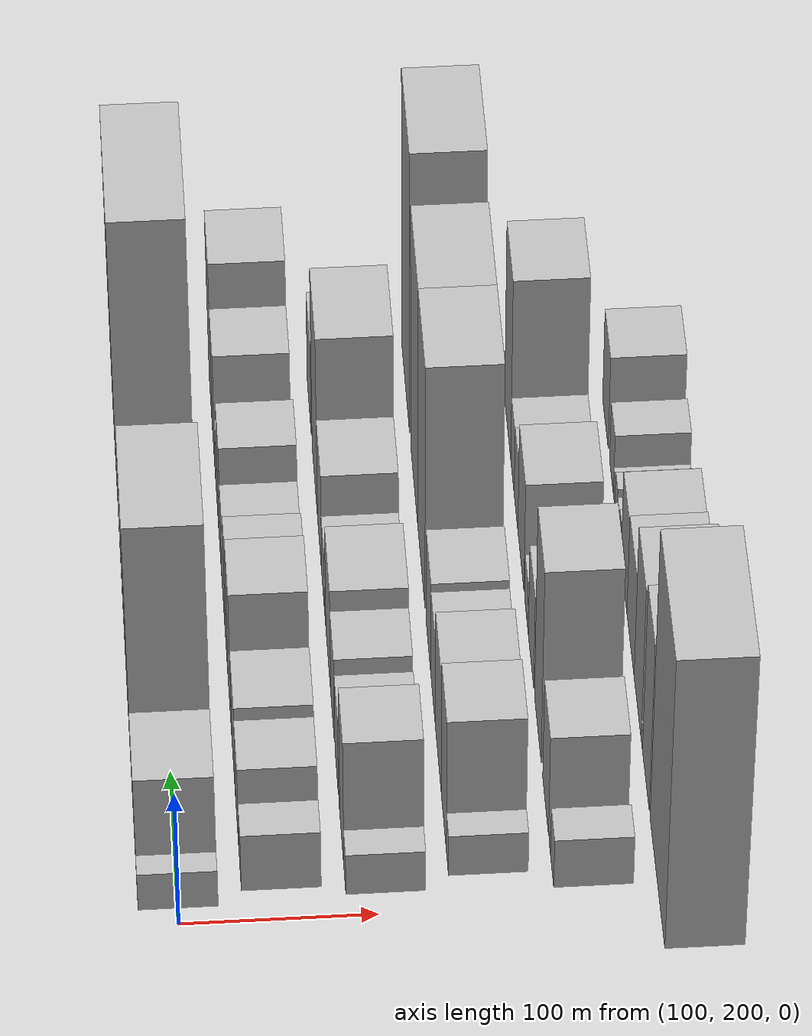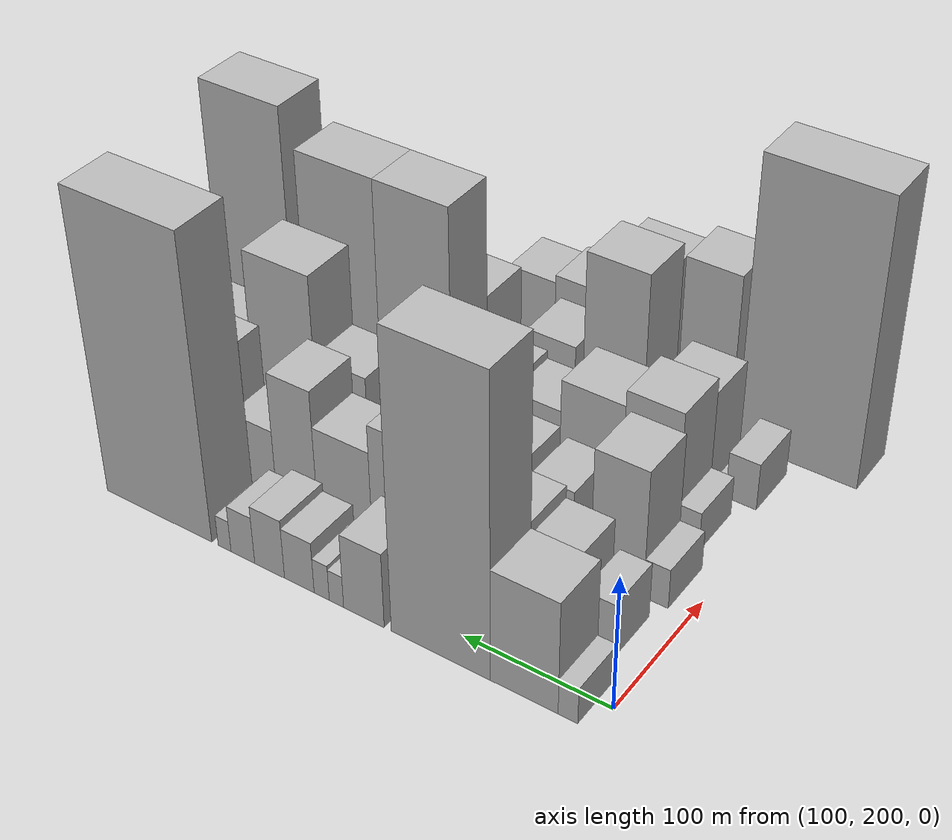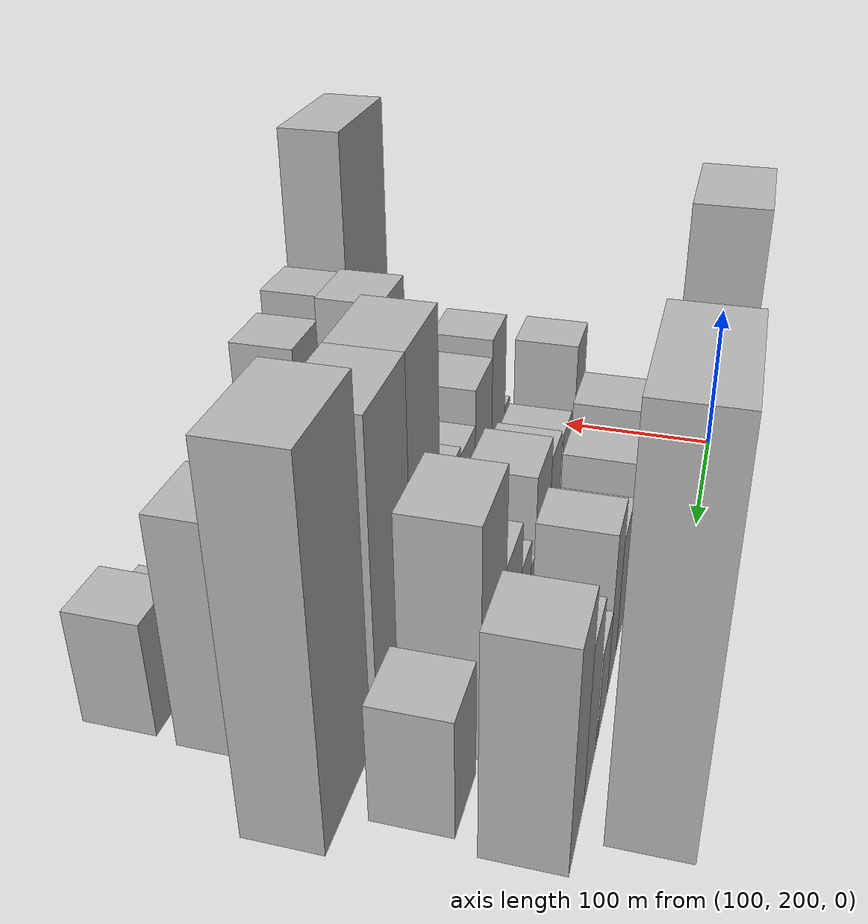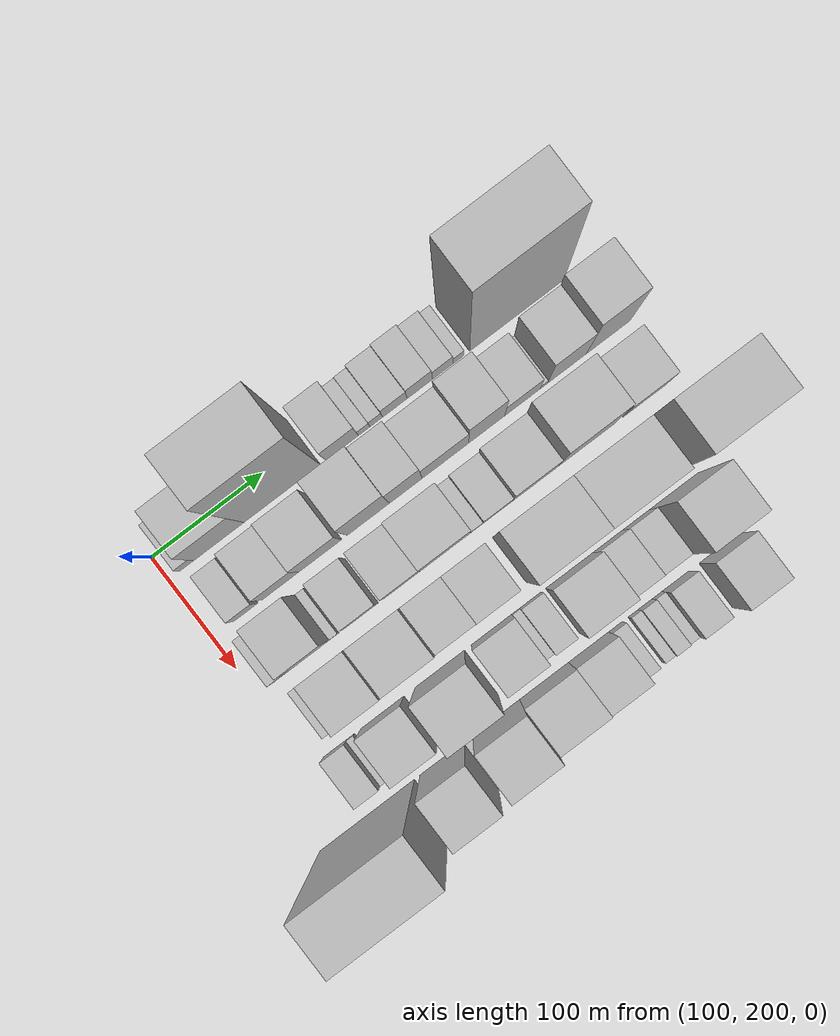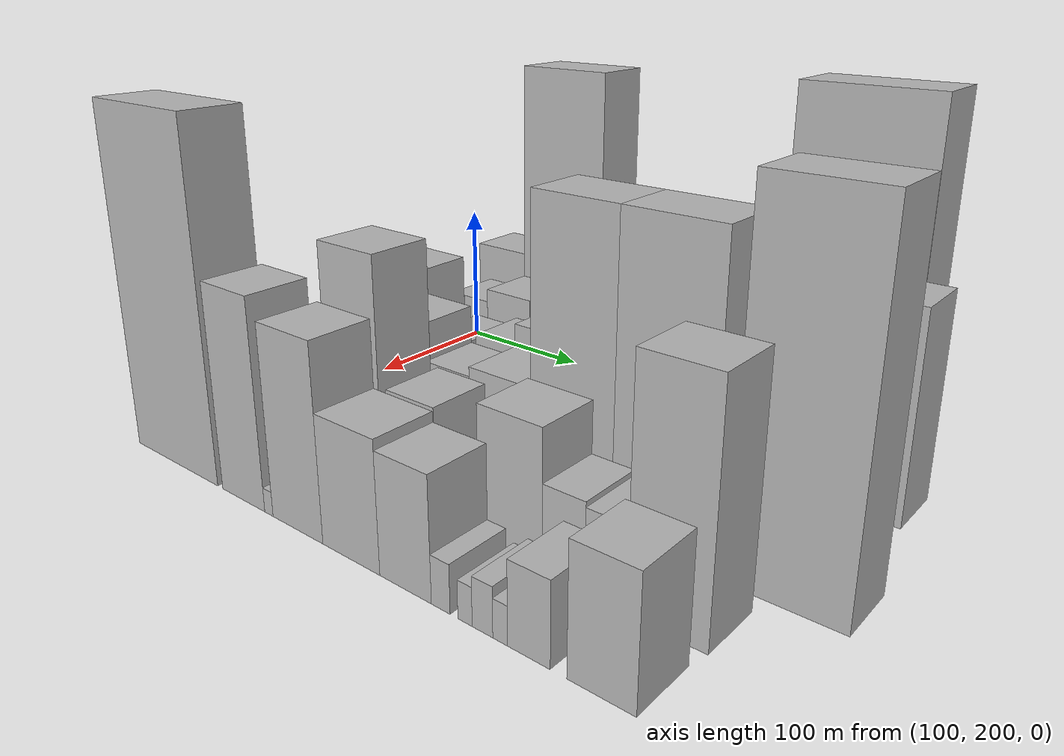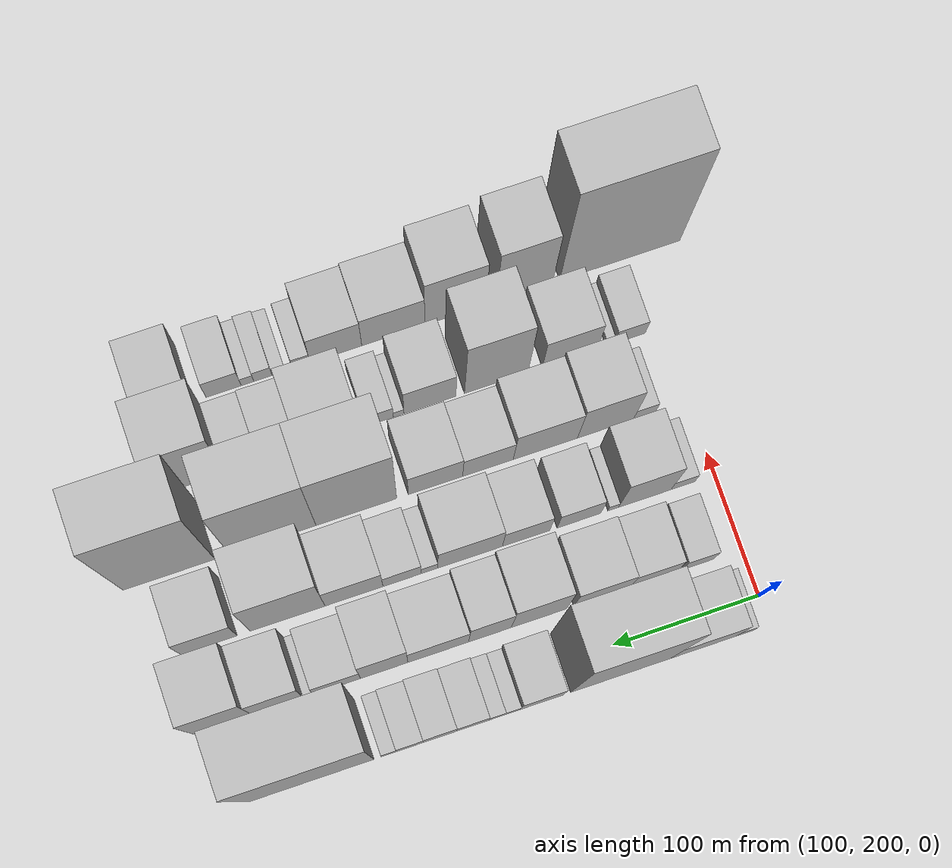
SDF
<sdf version="1.6">
 <world name="default">
  <model name="building_35">
   <static>1</static>
   <pose>100.0000 217.0242 0 0.000000 0.000000 0.000000</pose>
   <link name="link">
    <pose>0 0 13.50 0 0 0</pose>
    <collision name="collision"><geometry><box><size>40.0000 12.7344 27.0000</size></box></geometry></collision>
    <visual name="visual">
     <cast_shadows>0</cast_shadows>
     <geometry><box><size>40.0000 12.7344 27.0000</size></box></geometry>
     <material>
      <script>
       <uri>model://HANNAS_wall/materials/scripts</uri>
       <uri>model://HANNAS_wall/materials/textures</uri>
       <name>vrc/HANNAS_wall</name>
      </script>
     </material>
    </visual>
   </link>
  </model>
  <model name="building_36">
   <static>1</static>
   <pose>100.0000 245.6946 0 0.000000 0.000000 0.000000</pose>
   <link name="link">
    <pose>0 0 42.00 0 0 0</pose>
    <collision name="collision"><geometry><box><size>40.0000 44.6065 84.0000</size></box></geometry></collision>
    <visual name="visual">
     <cast_shadows>0</cast_shadows>
     <geometry><box><size>40.0000 44.6065 84.0000</size></box></geometry>
     <material>
      <script>
       <uri>model://HANNAS_wall/materials/scripts</uri>
       <uri>model://HANNAS_wall/materials/textures</uri>
       <name>vrc/HANNAS_wall</name>
      </script>
     </material>
    </visual>
   </link>
  </model>
  <model name="building_37">
   <static>1</static>
   <pose>100.0000 302.2115 0 0.000000 0.000000 0.000000</pose>
   <link name="link">
    <pose>0 0 109.50 0 0 0</pose>
    <collision name="collision"><geometry><box><size>40.0000 68.4273 219.0000</size></box></geometry></collision>
    <visual name="visual">
     <cast_shadows>0</cast_shadows>
     <geometry><box><size>40.0000 68.4273 219.0000</size></box></geometry>
     <material>
      <script>
       <uri>model://HANNAS_wall/materials/scripts</uri>
       <uri>model://HANNAS_wall/materials/textures</uri>
       <name>vrc/HANNAS_wall</name>
      </script>
     </material>
    </visual>
   </link>
  </model>
  <model name="building_38">
   <static>1</static>
   <pose>100.0000 356.0403 0 0.000000 0.000000 0.000000</pose>
   <link name="link">
    <pose>0 0 28.50 0 0 0</pose>
    <collision name="collision"><geometry><box><size>40.0000 29.2303 57.0000</size></box></geometry></collision>
    <visual name="visual">
     <cast_shadows>0</cast_shadows>
     <geometry><box><size>40.0000 29.2303 57.0000</size></box></geometry>
     <material>
      <script>
       <uri>model://HANNAS_wall/materials/scripts</uri>
       <uri>model://HANNAS_wall/materials/textures</uri>
       <name>vrc/HANNAS_wall</name>
      </script>
     </material>
    </visual>
   </link>
  </model>
  <model name="building_39">
   <static>1</static>
   <pose>100.0000 375.9039 0 0.000000 0.000000 0.000000</pose>
   <link name="link">
    <pose>0 0 12.00 0 0 0</pose>
    <collision name="collision"><geometry><box><size>40.0000 10.4968 24.0000</size></box></geometry></collision>
    <visual name="visual">
     <cast_shadows>0</cast_shadows>
     <geometry><box><size>40.0000 10.4968 24.0000</size></box></geometry>
     <material>
      <script>
       <uri>model://HANNAS_wall/materials/scripts</uri>
       <uri>model://HANNAS_wall/materials/textures</uri>
       <name>vrc/HANNAS_wall</name>
      </script>
     </material>
    </visual>
   </link>
  </model>
  <model name="building_40">
   <static>1</static>
   <pose>100.0000 386.7250 0 0.000000 0.000000 0.000000</pose>
   <link name="link">
    <pose>0 0 13.50 0 0 0</pose>
    <collision name="collision"><geometry><box><size>40.0000 11.1454 27.0000</size></box></geometry></collision>
    <visual name="visual">
     <cast_shadows>0</cast_shadows>
     <geometry><box><size>40.0000 11.1454 27.0000</size></box></geometry>
     <material>
      <script>
       <uri>model://HANNAS_wall/materials/scripts</uri>
       <uri>model://HANNAS_wall/materials/textures</uri>
       <name>vrc/HANNAS_wall</name>
      </script>
     </material>
    </visual>
   </link>
  </model>
  <model name="building_41">
   <static>1</static>
   <pose>100.0000 403.3421 0 0.000000 0.000000 0.000000</pose>
   <link name="link">
    <pose>0 0 19.50 0 0 0</pose>
    <collision name="collision"><geometry><box><size>40.0000 22.0888 39.0000</size></box></geometry></collision>
    <visual name="visual">
     <cast_shadows>0</cast_shadows>
     <geometry><box><size>40.0000 22.0888 39.0000</size></box></geometry>
     <material>
      <script>
       <uri>model://HANNAS_wall/materials/scripts</uri>
       <uri>model://HANNAS_wall/materials/textures</uri>
       <name>vrc/HANNAS_wall</name>
      </script>
     </material>
    </visual>
   </link>
  </model>
  <model name="building_42">
   <static>1</static>
   <pose>100.0000 425.7299 0 0.000000 0.000000 0.000000</pose>
   <link name="link">
    <pose>0 0 22.50 0 0 0</pose>
    <collision name="collision"><geometry><box><size>40.0000 22.6869 45.0000</size></box></geometry></collision>
    <visual name="visual">
     <cast_shadows>0</cast_shadows>
     <geometry><box><size>40.0000 22.6869 45.0000</size></box></geometry>
     <material>
      <script>
       <uri>model://HANNAS_wall/materials/scripts</uri>
       <uri>model://HANNAS_wall/materials/textures</uri>
       <name>vrc/HANNAS_wall</name>
      </script>
     </material>
    </visual>
   </link>
  </model>
  <model name="building_43">
   <static>1</static>
   <pose>100.0000 446.2108 0 0.000000 0.000000 0.000000</pose>
   <link name="link">
    <pose>0 0 18.00 0 0 0</pose>
    <collision name="collision"><geometry><box><size>40.0000 18.2748 36.0000</size></box></geometry></collision>
    <visual name="visual">
     <cast_shadows>0</cast_shadows>
     <geometry><box><size>40.0000 18.2748 36.0000</size></box></geometry>
     <material>
      <script>
       <uri>model://HANNAS_wall/materials/scripts</uri>
       <uri>model://HANNAS_wall/materials/textures</uri>
       <name>vrc/HANNAS_wall</name>
      </script>
     </material>
    </visual>
   </link>
  </model>
  <model name="building_44">
   <static>1</static>
   <pose>100.0000 460.3603 0 0.000000 0.000000 0.000000</pose>
   <link name="link">
    <pose>0 0 12.00 0 0 0</pose>
    <collision name="collision"><geometry><box><size>40.0000 10.0242 24.0000</size></box></geometry></collision>
    <visual name="visual">
     <cast_shadows>0</cast_shadows>
     <geometry><box><size>40.0000 10.0242 24.0000</size></box></geometry>
     <material>
      <script>
       <uri>model://HANNAS_wall/materials/scripts</uri>
       <uri>model://HANNAS_wall/materials/textures</uri>
       <name>vrc/HANNAS_wall</name>
      </script>
     </material>
    </visual>
   </link>
  </model>
  <model name="building_45">
   <static>1</static>
   <pose>100.0000 512.6496 0 0.000000 0.000000 0.000000</pose>
   <link name="link">
    <pose>0 0 112.50 0 0 0</pose>
    <collision name="collision"><geometry><box><size>40.0000 84.5545 225.0000</size></box></geometry></collision>
    <visual name="visual">
     <cast_shadows>0</cast_shadows>
     <geometry><box><size>40.0000 84.5545 225.0000</size></box></geometry>
     <material>
      <script>
       <uri>model://HANNAS_wall/materials/scripts</uri>
       <uri>model://HANNAS_wall/materials/textures</uri>
       <name>vrc/HANNAS_wall</name>
      </script>
     </material>
    </visual>
   </link>
  </model>
  <model name="building_94">
   <static>1</static>
   <pose>152.0000 230.4216 0 0.000000 0.000000 0.000000</pose>
   <link name="link">
    <pose>0 0 21.00 0 0 0</pose>
    <collision name="collision"><geometry><box><size>40.0000 21.3153 42.0000</size></box></geometry></collision>
    <visual name="visual">
     <cast_shadows>0</cast_shadows>
     <geometry><box><size>40.0000 21.3153 42.0000</size></box></geometry>
     <material>
      <script>
       <uri>model://HANNAS_wall/materials/scripts</uri>
       <uri>model://HANNAS_wall/materials/textures</uri>
       <name>vrc/HANNAS_wall</name>
      </script>
     </material>
    </visual>
   </link>
  </model>
  <model name="building_95">
   <static>1</static>
   <pose>152.0000 261.3870 0 0.000000 0.000000 0.000000</pose>
   <link name="link">
    <pose>0 0 31.50 0 0 0</pose>
    <collision name="collision"><geometry><box><size>40.0000 32.6154 63.0000</size></box></geometry></collision>
    <visual name="visual">
     <cast_shadows>0</cast_shadows>
     <geometry><box><size>40.0000 32.6154 63.0000</size></box></geometry>
     <material>
      <script>
       <uri>model://HANNAS_wall/materials/scripts</uri>
       <uri>model://HANNAS_wall/materials/textures</uri>
       <name>vrc/HANNAS_wall</name>
      </script>
     </material>
    </visual>
   </link>
  </model>
  <model name="building_96">
   <static>1</static>
   <pose>152.0000 296.9586 0 0.000000 0.000000 0.000000</pose>
   <link name="link">
    <pose>0 0 36.00 0 0 0</pose>
    <collision name="collision"><geometry><box><size>40.0000 38.5279 72.0000</size></box></geometry></collision>
    <visual name="visual">
     <cast_shadows>0</cast_shadows>
     <geometry><box><size>40.0000 38.5279 72.0000</size></box></geometry>
     <material>
      <script>
       <uri>model://HANNAS_wall/materials/scripts</uri>
       <uri>model://HANNAS_wall/materials/textures</uri>
       <name>vrc/HANNAS_wall</name>
      </script>
     </material>
    </visual>
   </link>
  </model>
  <model name="building_97">
   <static>1</static>
   <pose>152.0000 340.2343 0 0.000000 0.000000 0.000000</pose>
   <link name="link">
    <pose>0 0 54.00 0 0 0</pose>
    <collision name="collision"><geometry><box><size>40.0000 38.0236 108.0000</size></box></geometry></collision>
    <visual name="visual">
     <cast_shadows>0</cast_shadows>
     <geometry><box><size>40.0000 38.0236 108.0000</size></box></geometry>
     <material>
      <script>
       <uri>model://HANNAS_wall/materials/scripts</uri>
       <uri>model://HANNAS_wall/materials/textures</uri>
       <name>vrc/HANNAS_wall</name>
      </script>
     </material>
    </visual>
   </link>
  </model>
  <model name="building_98">
   <static>1</static>
   <pose>152.0000 373.8720 0 0.000000 0.000000 0.000000</pose>
   <link name="link">
    <pose>0 0 46.50 0 0 0</pose>
    <collision name="collision"><geometry><box><size>40.0000 29.2518 93.0000</size></box></geometry></collision>
    <visual name="visual">
     <cast_shadows>0</cast_shadows>
     <geometry><box><size>40.0000 29.2518 93.0000</size></box></geometry>
     <material>
      <script>
       <uri>model://HANNAS_wall/materials/scripts</uri>
       <uri>model://HANNAS_wall/materials/textures</uri>
       <name>vrc/HANNAS_wall</name>
      </script>
     </material>
    </visual>
   </link>
  </model>
  <model name="building_99">
   <static>1</static>
   <pose>152.0000 409.2362 0 0.000000 0.000000 0.000000</pose>
   <link name="link">
    <pose>0 0 36.00 0 0 0</pose>
    <collision name="collision"><geometry><box><size>40.0000 41.4767 72.0000</size></box></geometry></collision>
    <visual name="visual">
     <cast_shadows>0</cast_shadows>
     <geometry><box><size>40.0000 41.4767 72.0000</size></box></geometry>
     <material>
      <script>
       <uri>model://HANNAS_wall/materials/scripts</uri>
       <uri>model://HANNAS_wall/materials/textures</uri>
       <name>vrc/HANNAS_wall</name>
      </script>
     </material>
    </visual>
   </link>
  </model>
  <model name="building_100">
   <static>1</static>
   <pose>152.0000 446.0586 0 0.000000 0.000000 0.000000</pose>
   <link name="link">
    <pose>0 0 49.50 0 0 0</pose>
    <collision name="collision"><geometry><box><size>40.0000 32.1679 99.0000</size></box></geometry></collision>
    <visual name="visual">
     <cast_shadows>0</cast_shadows>
     <geometry><box><size>40.0000 32.1679 99.0000</size></box></geometry>
     <material>
      <script>
       <uri>model://HANNAS_wall/materials/scripts</uri>
       <uri>model://HANNAS_wall/materials/textures</uri>
       <name>vrc/HANNAS_wall</name>
      </script>
     </material>
    </visual>
   </link>
  </model>
  <model name="building_101">
   <static>1</static>
   <pose>152.0000 478.1528 0 0.000000 0.000000 0.000000</pose>
   <link name="link">
    <pose>0 0 27.00 0 0 0</pose>
    <collision name="collision"><geometry><box><size>40.0000 32.0204 54.0000</size></box></geometry></collision>
    <visual name="visual">
     <cast_shadows>0</cast_shadows>
     <geometry><box><size>40.0000 32.0204 54.0000</size></box></geometry>
     <material>
      <script>
       <uri>model://HANNAS_wall/materials/scripts</uri>
       <uri>model://HANNAS_wall/materials/textures</uri>
       <name>vrc/HANNAS_wall</name>
      </script>
     </material>
    </visual>
   </link>
  </model>
  <model name="building_102">
   <static>1</static>
   <pose>152.0000 497.4850 0 0.000000 0.000000 0.000000</pose>
   <link name="link">
    <pose>0 0 7.50 0 0 0</pose>
    <collision name="collision"><geometry><box><size>40.0000 6.6440 15.0000</size></box></geometry></collision>
    <visual name="visual">
     <cast_shadows>0</cast_shadows>
     <geometry><box><size>40.0000 6.6440 15.0000</size></box></geometry>
     <material>
      <script>
       <uri>model://HANNAS_wall/materials/scripts</uri>
       <uri>model://HANNAS_wall/materials/textures</uri>
       <name>vrc/HANNAS_wall</name>
      </script>
     </material>
    </visual>
   </link>
  </model>
  <model name="building_103">
   <static>1</static>
   <pose>152.0000 518.0880 0 0.000000 0.000000 0.000000</pose>
   <link name="link">
    <pose>0 0 46.50 0 0 0</pose>
    <collision name="collision"><geometry><box><size>40.0000 34.5620 93.0000</size></box></geometry></collision>
    <visual name="visual">
     <cast_shadows>0</cast_shadows>
     <geometry><box><size>40.0000 34.5620 93.0000</size></box></geometry>
     <material>
      <script>
       <uri>model://HANNAS_wall/materials/scripts</uri>
       <uri>model://HANNAS_wall/materials/textures</uri>
       <name>vrc/HANNAS_wall</name>
      </script>
     </material>
    </visual>
   </link>
  </model>
  <model name="building_104">
   <static>1</static>
   <pose>152.0000 555.0826 0 0.000000 0.000000 0.000000</pose>
   <link name="link">
    <pose>0 0 63.00 0 0 0</pose>
    <collision name="collision"><geometry><box><size>40.0000 39.4271 126.0000</size></box></geometry></collision>
    <visual name="visual">
     <cast_shadows>0</cast_shadows>
     <geometry><box><size>40.0000 39.4271 126.0000</size></box></geometry>
     <material>
      <script>
       <uri>model://HANNAS_wall/materials/scripts</uri>
       <uri>model://HANNAS_wall/materials/textures</uri>
       <name>vrc/HANNAS_wall</name>
      </script>
     </material>
    </visual>
   </link>
  </model>
  <model name="building_141">
   <static>1</static>
   <pose>204.0000 222.3287 0 0.000000 0.000000 0.000000</pose>
   <link name="link">
    <pose>0 0 15.00 0 0 0</pose>
    <collision name="collision"><geometry><box><size>40.0000 16.6390 30.0000</size></box></geometry></collision>
    <visual name="visual">
     <cast_shadows>0</cast_shadows>
     <geometry><box><size>40.0000 16.6390 30.0000</size></box></geometry>
     <material>
      <script>
       <uri>model://HANNAS_wall/materials/scripts</uri>
       <uri>model://HANNAS_wall/materials/textures</uri>
       <name>vrc/HANNAS_wall</name>
      </script>
     </material>
    </visual>
   </link>
  </model>
  <model name="building_142">
   <static>1</static>
   <pose>204.0000 248.8746 0 0.000000 0.000000 0.000000</pose>
   <link name="link">
    <pose>0 0 48.00 0 0 0</pose>
    <collision name="collision"><geometry><box><size>40.0000 36.4527 96.0000</size></box></geometry></collision>
    <visual name="visual">
     <cast_shadows>0</cast_shadows>
     <geometry><box><size>40.0000 36.4527 96.0000</size></box></geometry>
     <material>
      <script>
       <uri>model://HANNAS_wall/materials/scripts</uri>
       <uri>model://HANNAS_wall/materials/textures</uri>
       <name>vrc/HANNAS_wall</name>
      </script>
     </material>
    </visual>
   </link>
  </model>
  <model name="building_143">
   <static>1</static>
   <pose>204.0000 270.7658 0 0.000000 0.000000 0.000000</pose>
   <link name="link">
    <pose>0 0 9.00 0 0 0</pose>
    <collision name="collision"><geometry><box><size>40.0000 7.3298 18.0000</size></box></geometry></collision>
    <visual name="visual">
     <cast_shadows>0</cast_shadows>
     <geometry><box><size>40.0000 7.3298 18.0000</size></box></geometry>
     <material>
      <script>
       <uri>model://HANNAS_wall/materials/scripts</uri>
       <uri>model://HANNAS_wall/materials/textures</uri>
       <name>vrc/HANNAS_wall</name>
      </script>
     </material>
    </visual>
   </link>
  </model>
  <model name="building_144">
   <static>1</static>
   <pose>204.0000 294.5492 0 0.000000 0.000000 0.000000</pose>
   <link name="link">
    <pose>0 0 28.50 0 0 0</pose>
    <collision name="collision"><geometry><box><size>40.0000 30.2370 57.0000</size></box></geometry></collision>
    <visual name="visual">
     <cast_shadows>0</cast_shadows>
     <geometry><box><size>40.0000 30.2370 57.0000</size></box></geometry>
     <material>
      <script>
       <uri>model://HANNAS_wall/materials/scripts</uri>
       <uri>model://HANNAS_wall/materials/textures</uri>
       <name>vrc/HANNAS_wall</name>
      </script>
     </material>
    </visual>
   </link>
  </model>
  <model name="building_145">
   <static>1</static>
   <pose>204.0000 331.0712 0 0.000000 0.000000 0.000000</pose>
   <link name="link">
    <pose>0 0 31.50 0 0 0</pose>
    <collision name="collision"><geometry><box><size>40.0000 32.8069 63.0000</size></box></geometry></collision>
    <visual name="visual">
     <cast_shadows>0</cast_shadows>
     <geometry><box><size>40.0000 32.8069 63.0000</size></box></geometry>
     <material>
      <script>
       <uri>model://HANNAS_wall/materials/scripts</uri>
       <uri>model://HANNAS_wall/materials/textures</uri>
       <name>vrc/HANNAS_wall</name>
      </script>
     </material>
    </visual>
   </link>
  </model>
  <model name="building_146">
   <static>1</static>
   <pose>204.0000 369.7140 0 0.000000 0.000000 0.000000</pose>
   <link name="link">
    <pose>0 0 39.00 0 0 0</pose>
    <collision name="collision"><geometry><box><size>40.0000 44.4787 78.0000</size></box></geometry></collision>
    <visual name="visual">
     <cast_shadows>0</cast_shadows>
     <geometry><box><size>40.0000 44.4787 78.0000</size></box></geometry>
     <material>
      <script>
       <uri>model://HANNAS_wall/materials/scripts</uri>
       <uri>model://HANNAS_wall/materials/textures</uri>
       <name>vrc/HANNAS_wall</name>
      </script>
     </material>
    </visual>
   </link>
  </model>
  <model name="building_147">
   <static>1</static>
   <pose>204.0000 397.6254 0 0.000000 0.000000 0.000000</pose>
   <link name="link">
    <pose>0 0 13.50 0 0 0</pose>
    <collision name="collision"><geometry><box><size>40.0000 11.3440 27.0000</size></box></geometry></collision>
    <visual name="visual">
     <cast_shadows>0</cast_shadows>
     <geometry><box><size>40.0000 11.3440 27.0000</size></box></geometry>
     <material>
      <script>
       <uri>model://HANNAS_wall/materials/scripts</uri>
       <uri>model://HANNAS_wall/materials/textures</uri>
       <name>vrc/HANNAS_wall</name>
      </script>
     </material>
    </visual>
   </link>
  </model>
  <model name="building_148">
   <static>1</static>
   <pose>204.0000 416.4373 0 0.000000 0.000000 0.000000</pose>
   <link name="link">
    <pose>0 0 22.50 0 0 0</pose>
    <collision name="collision"><geometry><box><size>40.0000 26.2798 45.0000</size></box></geometry></collision>
    <visual name="visual">
     <cast_shadows>0</cast_shadows>
     <geometry><box><size>40.0000 26.2798 45.0000</size></box></geometry>
     <material>
      <script>
       <uri>model://HANNAS_wall/materials/scripts</uri>
       <uri>model://HANNAS_wall/materials/textures</uri>
       <name>vrc/HANNAS_wall</name>
      </script>
     </material>
    </visual>
   </link>
  </model>
  <model name="building_149">
   <static>1</static>
   <pose>204.0000 449.4391 0 0.000000 0.000000 0.000000</pose>
   <link name="link">
    <pose>0 0 37.50 0 0 0</pose>
    <collision name="collision"><geometry><box><size>40.0000 39.7237 75.0000</size></box></geometry></collision>
    <visual name="visual">
     <cast_shadows>0</cast_shadows>
     <geometry><box><size>40.0000 39.7237 75.0000</size></box></geometry>
     <material>
      <script>
       <uri>model://HANNAS_wall/materials/scripts</uri>
       <uri>model://HANNAS_wall/materials/textures</uri>
       <name>vrc/HANNAS_wall</name>
      </script>
     </material>
    </visual>
   </link>
  </model>
  <model name="building_150">
   <static>1</static>
   <pose>204.0000 494.8100 0 0.000000 0.000000 0.000000</pose>
   <link name="link">
    <pose>0 0 67.50 0 0 0</pose>
    <collision name="collision"><geometry><box><size>40.0000 51.0181 135.0000</size></box></geometry></collision>
    <visual name="visual">
     <cast_shadows>0</cast_shadows>
     <geometry><box><size>40.0000 51.0181 135.0000</size></box></geometry>
     <material>
      <script>
       <uri>model://HANNAS_wall/materials/scripts</uri>
       <uri>model://HANNAS_wall/materials/textures</uri>
       <name>vrc/HANNAS_wall</name>
      </script>
     </material>
    </visual>
   </link>
  </model>
  <model name="building_151">
   <static>1</static>
   <pose>204.0000 548.5438 0 0.000000 0.000000 0.000000</pose>
   <link name="link">
    <pose>0 0 34.50 0 0 0</pose>
    <collision name="collision"><geometry><box><size>40.0000 38.4496 69.0000</size></box></geometry></collision>
    <visual name="visual">
     <cast_shadows>0</cast_shadows>
     <geometry><box><size>40.0000 38.4496 69.0000</size></box></geometry>
     <material>
      <script>
       <uri>model://HANNAS_wall/materials/scripts</uri>
       <uri>model://HANNAS_wall/materials/textures</uri>
       <name>vrc/HANNAS_wall</name>
      </script>
     </material>
    </visual>
   </link>
  </model>
  <model name="building_193">
   <static>1</static>
   <pose>256.0000 230.6578 0 0.000000 0.000000 0.000000</pose>
   <link name="link">
    <pose>0 0 15.00 0 0 0</pose>
    <collision name="collision"><geometry><box><size>40.0000 15.4745 30.0000</size></box></geometry></collision>
    <visual name="visual">
     <cast_shadows>0</cast_shadows>
     <geometry><box><size>40.0000 15.4745 30.0000</size></box></geometry>
     <material>
      <script>
       <uri>model://HANNAS_wall/materials/scripts</uri>
       <uri>model://HANNAS_wall/materials/textures</uri>
       <name>vrc/HANNAS_wall</name>
      </script>
     </material>
    </visual>
   </link>
  </model>
  <model name="building_194">
   <static>1</static>
   <pose>256.0000 257.9091 0 0.000000 0.000000 0.000000</pose>
   <link name="link">
    <pose>0 0 49.50 0 0 0</pose>
    <collision name="collision"><geometry><box><size>40.0000 39.0282 99.0000</size></box></geometry></collision>
    <visual name="visual">
     <cast_shadows>0</cast_shadows>
     <geometry><box><size>40.0000 39.0282 99.0000</size></box></geometry>
     <material>
      <script>
       <uri>model://HANNAS_wall/materials/scripts</uri>
       <uri>model://HANNAS_wall/materials/textures</uri>
       <name>vrc/HANNAS_wall</name>
      </script>
     </material>
    </visual>
   </link>
  </model>
  <model name="building_195">
   <static>1</static>
   <pose>256.0000 299.7390 0 0.000000 0.000000 0.000000</pose>
   <link name="link">
    <pose>0 0 43.50 0 0 0</pose>
    <collision name="collision"><geometry><box><size>40.0000 44.6315 87.0000</size></box></geometry></collision>
    <visual name="visual">
     <cast_shadows>0</cast_shadows>
     <geometry><box><size>40.0000 44.6315 87.0000</size></box></geometry>
     <material>
      <script>
       <uri>model://HANNAS_wall/materials/scripts</uri>
       <uri>model://HANNAS_wall/materials/textures</uri>
       <name>vrc/HANNAS_wall</name>
      </script>
     </material>
    </visual>
   </link>
  </model>
  <model name="building_196">
   <static>1</static>
   <pose>256.0000 339.6181 0 0.000000 0.000000 0.000000</pose>
   <link name="link">
    <pose>0 0 31.50 0 0 0</pose>
    <collision name="collision"><geometry><box><size>40.0000 35.1269 63.0000</size></box></geometry></collision>
    <visual name="visual">
     <cast_shadows>0</cast_shadows>
     <geometry><box><size>40.0000 35.1269 63.0000</size></box></geometry>
     <material>
      <script>
       <uri>model://HANNAS_wall/materials/scripts</uri>
       <uri>model://HANNAS_wall/materials/textures</uri>
       <name>vrc/HANNAS_wall</name>
      </script>
     </material>
    </visual>
   </link>
  </model>
  <model name="building_197">
   <static>1</static>
   <pose>256.0000 375.9608 0 0.000000 0.000000 0.000000</pose>
   <link name="link">
    <pose>0 0 34.50 0 0 0</pose>
    <collision name="collision"><geometry><box><size>40.0000 37.5584 69.0000</size></box></geometry></collision>
    <visual name="visual">
     <cast_shadows>0</cast_shadows>
     <geometry><box><size>40.0000 37.5584 69.0000</size></box></geometry>
     <material>
      <script>
       <uri>model://HANNAS_wall/materials/scripts</uri>
       <uri>model://HANNAS_wall/materials/textures</uri>
       <name>vrc/HANNAS_wall</name>
      </script>
     </material>
    </visual>
   </link>
  </model>
  <model name="building_198">
   <static>1</static>
   <pose>256.0000 430.5627 0 0.000000 0.000000 0.000000</pose>
   <link name="link">
    <pose>0 0 90.00 0 0 0</pose>
    <collision name="collision"><geometry><box><size>40.0000 55.6454 180.0000</size></box></geometry></collision>
    <visual name="visual">
     <cast_shadows>0</cast_shadows>
     <geometry><box><size>40.0000 55.6454 180.0000</size></box></geometry>
     <material>
      <script>
       <uri>model://HANNAS_wall/materials/scripts</uri>
       <uri>model://HANNAS_wall/materials/textures</uri>
       <name>vrc/HANNAS_wall</name>
      </script>
     </material>
    </visual>
   </link>
  </model>
  <model name="building_199">
   <static>1</static>
   <pose>256.0000 488.0481 0 0.000000 0.000000 0.000000</pose>
   <link name="link">
    <pose>0 0 90.00 0 0 0</pose>
    <collision name="collision"><geometry><box><size>40.0000 59.3253 180.0000</size></box></geometry></collision>
    <visual name="visual">
     <cast_shadows>0</cast_shadows>
     <geometry><box><size>40.0000 59.3253 180.0000</size></box></geometry>
     <material>
      <script>
       <uri>model://HANNAS_wall/materials/scripts</uri>
       <uri>model://HANNAS_wall/materials/textures</uri>
       <name>vrc/HANNAS_wall</name>
      </script>
     </material>
    </visual>
   </link>
  </model>
  <model name="building_200">
   <static>1</static>
   <pose>256.0000 559.2088 0 0.000000 0.000000 0.000000</pose>
   <link name="link">
    <pose>0 0 103.50 0 0 0</pose>
    <collision name="collision"><geometry><box><size>40.0000 62.9960 207.0000</size></box></geometry></collision>
    <visual name="visual">
     <cast_shadows>0</cast_shadows>
     <geometry><box><size>40.0000 62.9960 207.0000</size></box></geometry>
     <material>
      <script>
       <uri>model://HANNAS_wall/materials/scripts</uri>
       <uri>model://HANNAS_wall/materials/textures</uri>
       <name>vrc/HANNAS_wall</name>
      </script>
     </material>
    </visual>
   </link>
  </model>
  <model name="building_242">
   <static>1</static>
   <pose>308.0000 222.4487 0 0.000000 0.000000 0.000000</pose>
   <link name="link">
    <pose>0 0 18.00 0 0 0</pose>
    <collision name="collision"><geometry><box><size>40.0000 21.3160 36.0000</size></box></geometry></collision>
    <visual name="visual">
     <cast_shadows>0</cast_shadows>
     <geometry><box><size>40.0000 21.3160 36.0000</size></box></geometry>
     <material>
      <script>
       <uri>model://HANNAS_wall/materials/scripts</uri>
       <uri>model://HANNAS_wall/materials/textures</uri>
       <name>vrc/HANNAS_wall</name>
      </script>
     </material>
    </visual>
   </link>
  </model>
  <model name="building_243">
   <static>1</static>
   <pose>308.0000 236.2408 0 0.000000 0.000000 0.000000</pose>
   <link name="link">
    <pose>0 0 7.50 0 0 0</pose>
    <collision name="collision"><geometry><box><size>40.0000 6.2682 15.0000</size></box></geometry></collision>
    <visual name="visual">
     <cast_shadows>0</cast_shadows>
     <geometry><box><size>40.0000 6.2682 15.0000</size></box></geometry>
     <material>
      <script>
       <uri>model://HANNAS_wall/materials/scripts</uri>
       <uri>model://HANNAS_wall/materials/textures</uri>
       <name>vrc/HANNAS_wall</name>
      </script>
     </material>
    </visual>
   </link>
  </model>
  <model name="building_244">
   <static>1</static>
   <pose>308.0000 264.6372 0 0.000000 0.000000 0.000000</pose>
   <link name="link">
    <pose>0 0 37.50 0 0 0</pose>
    <collision name="collision"><geometry><box><size>40.0000 38.5246 75.0000</size></box></geometry></collision>
    <visual name="visual">
     <cast_shadows>0</cast_shadows>
     <geometry><box><size>40.0000 38.5246 75.0000</size></box></geometry>
     <material>
      <script>
       <uri>model://HANNAS_wall/materials/scripts</uri>
       <uri>model://HANNAS_wall/materials/textures</uri>
       <name>vrc/HANNAS_wall</name>
      </script>
     </material>
    </visual>
   </link>
  </model>
  <model name="building_245">
   <static>1</static>
   <pose>308.0000 316.0681 0 0.000000 0.000000 0.000000</pose>
   <link name="link">
    <pose>0 0 72.00 0 0 0</pose>
    <collision name="collision"><geometry><box><size>40.0000 44.3372 144.0000</size></box></geometry></collision>
    <visual name="visual">
     <cast_shadows>0</cast_shadows>
     <geometry><box><size>40.0000 44.3372 144.0000</size></box></geometry>
     <material>
      <script>
       <uri>model://HANNAS_wall/materials/scripts</uri>
       <uri>model://HANNAS_wall/materials/textures</uri>
       <name>vrc/HANNAS_wall</name>
      </script>
     </material>
    </visual>
   </link>
  </model>
  <model name="building_246">
   <static>1</static>
   <pose>308.0000 362.2526 0 0.000000 0.000000 0.000000</pose>
   <link name="link">
    <pose>0 0 34.50 0 0 0</pose>
    <collision name="collision"><geometry><box><size>40.0000 36.0318 69.0000</size></box></geometry></collision>
    <visual name="visual">
     <cast_shadows>0</cast_shadows>
     <geometry><box><size>40.0000 36.0318 69.0000</size></box></geometry>
     <material>
      <script>
       <uri>model://HANNAS_wall/materials/scripts</uri>
       <uri>model://HANNAS_wall/materials/textures</uri>
       <name>vrc/HANNAS_wall</name>
      </script>
     </material>
    </visual>
   </link>
  </model>
  <model name="building_247">
   <static>1</static>
   <pose>308.0000 383.9522 0 0.000000 0.000000 0.000000</pose>
   <link name="link">
    <pose>0 0 7.50 0 0 0</pose>
    <collision name="collision"><geometry><box><size>40.0000 7.3675 15.0000</size></box></geometry></collision>
    <visual name="visual">
     <cast_shadows>0</cast_shadows>
     <geometry><box><size>40.0000 7.3675 15.0000</size></box></geometry>
     <material>
      <script>
       <uri>model://HANNAS_wall/materials/scripts</uri>
       <uri>model://HANNAS_wall/materials/textures</uri>
       <name>vrc/HANNAS_wall</name>
      </script>
     </material>
    </visual>
   </link>
  </model>
  <model name="building_248">
   <static>1</static>
   <pose>308.0000 397.3643 0 0.000000 0.000000 0.000000</pose>
   <link name="link">
    <pose>0 0 16.50 0 0 0</pose>
    <collision name="collision"><geometry><box><size>40.0000 19.4566 33.0000</size></box></geometry></collision>
    <visual name="visual">
     <cast_shadows>0</cast_shadows>
     <geometry><box><size>40.0000 19.4566 33.0000</size></box></geometry>
     <material>
      <script>
       <uri>model://HANNAS_wall/materials/scripts</uri>
       <uri>model://HANNAS_wall/materials/textures</uri>
       <name>vrc/HANNAS_wall</name>
      </script>
     </material>
    </visual>
   </link>
  </model>
  <model name="building_249">
   <static>1</static>
   <pose>308.0000 432.3552 0 0.000000 0.000000 0.000000</pose>
   <link name="link">
    <pose>0 0 40.50 0 0 0</pose>
    <collision name="collision"><geometry><box><size>40.0000 42.5251 81.0000</size></box></geometry></collision>
    <visual name="visual">
     <cast_shadows>0</cast_shadows>
     <geometry><box><size>40.0000 42.5251 81.0000</size></box></geometry>
     <material>
      <script>
       <uri>model://HANNAS_wall/materials/scripts</uri>
       <uri>model://HANNAS_wall/materials/textures</uri>
       <name>vrc/HANNAS_wall</name>
      </script>
     </material>
    </visual>
   </link>
  </model>
  <model name="building_250">
   <static>1</static>
   <pose>308.0000 466.7146 0 0.000000 0.000000 0.000000</pose>
   <link name="link">
    <pose>0 0 25.50 0 0 0</pose>
    <collision name="collision"><geometry><box><size>40.0000 26.1939 51.0000</size></box></geometry></collision>
    <visual name="visual">
     <cast_shadows>0</cast_shadows>
     <geometry><box><size>40.0000 26.1939 51.0000</size></box></geometry>
     <material>
      <script>
       <uri>model://HANNAS_wall/materials/scripts</uri>
       <uri>model://HANNAS_wall/materials/textures</uri>
       <name>vrc/HANNAS_wall</name>
      </script>
     </material>
    </visual>
   </link>
  </model>
  <model name="building_251">
   <static>1</static>
   <pose>308.0000 491.9533 0 0.000000 0.000000 0.000000</pose>
   <link name="link">
    <pose>0 0 24.00 0 0 0</pose>
    <collision name="collision"><geometry><box><size>40.0000 24.2834 48.0000</size></box></geometry></collision>
    <visual name="visual">
     <cast_shadows>0</cast_shadows>
     <geometry><box><size>40.0000 24.2834 48.0000</size></box></geometry>
     <material>
      <script>
       <uri>model://HANNAS_wall/materials/scripts</uri>
       <uri>model://HANNAS_wall/materials/textures</uri>
       <name>vrc/HANNAS_wall</name>
      </script>
     </material>
    </visual>
   </link>
  </model>
  <model name="building_252">
   <static>1</static>
   <pose>308.0000 526.0203 0 0.000000 0.000000 0.000000</pose>
   <link name="link">
    <pose>0 0 67.50 0 0 0</pose>
    <collision name="collision"><geometry><box><size>40.0000 43.8508 135.0000</size></box></geometry></collision>
    <visual name="visual">
     <cast_shadows>0</cast_shadows>
     <geometry><box><size>40.0000 43.8508 135.0000</size></box></geometry>
     <material>
      <script>
       <uri>model://HANNAS_wall/materials/scripts</uri>
       <uri>model://HANNAS_wall/materials/textures</uri>
       <name>vrc/HANNAS_wall</name>
      </script>
     </material>
    </visual>
   </link>
  </model>
  <model name="building_293">
   <static>1</static>
   <pose>360.0000 211.4037 0 0.000000 0.000000 0.000000</pose>
   <link name="link">
    <pose>0 0 108.00 0 0 0</pose>
    <collision name="collision"><geometry><box><size>40.0000 84.7139 216.0000</size></box></geometry></collision>
    <visual name="visual">
     <cast_shadows>0</cast_shadows>
     <geometry><box><size>40.0000 84.7139 216.0000</size></box></geometry>
     <material>
      <script>
       <uri>model://HANNAS_wall/materials/scripts</uri>
       <uri>model://HANNAS_wall/materials/textures</uri>
       <name>vrc/HANNAS_wall</name>
      </script>
     </material>
    </visual>
   </link>
  </model>
  <model name="building_294">
   <static>1</static>
   <pose>360.0000 278.6396 0 0.000000 0.000000 0.000000</pose>
   <link name="link">
    <pose>0 0 63.00 0 0 0</pose>
    <collision name="collision"><geometry><box><size>40.0000 39.7578 126.0000</size></box></geometry></collision>
    <visual name="visual">
     <cast_shadows>0</cast_shadows>
     <geometry><box><size>40.0000 39.7578 126.0000</size></box></geometry>
     <material>
      <script>
       <uri>model://HANNAS_wall/materials/scripts</uri>
       <uri>model://HANNAS_wall/materials/textures</uri>
       <name>vrc/HANNAS_wall</name>
      </script>
     </material>
    </visual>
   </link>
  </model>
  <model name="building_295">
   <static>1</static>
   <pose>360.0000 302.2321 0 0.000000 0.000000 0.000000</pose>
   <link name="link">
    <pose>0 0 7.50 0 0 0</pose>
    <collision name="collision"><geometry><box><size>40.0000 7.4271 15.0000</size></box></geometry></collision>
    <visual name="visual">
     <cast_shadows>0</cast_shadows>
     <geometry><box><size>40.0000 7.4271 15.0000</size></box></geometry>
     <material>
      <script>
       <uri>model://HANNAS_wall/materials/scripts</uri>
       <uri>model://HANNAS_wall/materials/textures</uri>
       <name>vrc/HANNAS_wall</name>
      </script>
     </material>
    </visual>
   </link>
  </model>
  <model name="building_296">
   <static>1</static>
   <pose>360.0000 327.1491 0 0.000000 0.000000 0.000000</pose>
   <link name="link">
    <pose>0 0 57.00 0 0 0</pose>
    <collision name="collision"><geometry><box><size>40.0000 42.4069 114.0000</size></box></geometry></collision>
    <visual name="visual">
     <cast_shadows>0</cast_shadows>
     <geometry><box><size>40.0000 42.4069 114.0000</size></box></geometry>
     <material>
      <script>
       <uri>model://HANNAS_wall/materials/scripts</uri>
       <uri>model://HANNAS_wall/materials/textures</uri>
       <name>vrc/HANNAS_wall</name>
      </script>
     </material>
    </visual>
   </link>
  </model>
  <model name="building_297">
   <static>1</static>
   <pose>360.0000 370.2904 0 0.000000 0.000000 0.000000</pose>
   <link name="link">
    <pose>0 0 37.50 0 0 0</pose>
    <collision name="collision"><geometry><box><size>40.0000 43.8759 75.0000</size></box></geometry></collision>
    <visual name="visual">
     <cast_shadows>0</cast_shadows>
     <geometry><box><size>40.0000 43.8759 75.0000</size></box></geometry>
     <material>
      <script>
       <uri>model://HANNAS_wall/materials/scripts</uri>
       <uri>model://HANNAS_wall/materials/textures</uri>
       <name>vrc/HANNAS_wall</name>
      </script>
     </material>
    </visual>
   </link>
  </model>
  <model name="building_298">
   <static>1</static>
   <pose>360.0000 410.2492 0 0.000000 0.000000 0.000000</pose>
   <link name="link">
    <pose>0 0 34.50 0 0 0</pose>
    <collision name="collision"><geometry><box><size>40.0000 36.0416 69.0000</size></box></geometry></collision>
    <visual name="visual">
     <cast_shadows>0</cast_shadows>
     <geometry><box><size>40.0000 36.0416 69.0000</size></box></geometry>
     <material>
      <script>
       <uri>model://HANNAS_wall/materials/scripts</uri>
       <uri>model://HANNAS_wall/materials/textures</uri>
       <name>vrc/HANNAS_wall</name>
      </script>
     </material>
    </visual>
   </link>
  </model>
  <model name="building_299">
   <static>1</static>
   <pose>360.0000 434.4319 0 0.000000 0.000000 0.000000</pose>
   <link name="link">
    <pose>0 0 13.50 0 0 0</pose>
    <collision name="collision"><geometry><box><size>40.0000 12.3239 27.0000</size></box></geometry></collision>
    <visual name="visual">
     <cast_shadows>0</cast_shadows>
     <geometry><box><size>40.0000 12.3239 27.0000</size></box></geometry>
     <material>
      <script>
       <uri>model://HANNAS_wall/materials/scripts</uri>
       <uri>model://HANNAS_wall/materials/textures</uri>
       <name>vrc/HANNAS_wall</name>
      </script>
     </material>
    </visual>
   </link>
  </model>
  <model name="building_300">
   <static>1</static>
   <pose>360.0000 450.1114 0 0.000000 0.000000 0.000000</pose>
   <link name="link">
    <pose>0 0 10.50 0 0 0</pose>
    <collision name="collision"><geometry><box><size>40.0000 9.0350 21.0000</size></box></geometry></collision>
    <visual name="visual">
     <cast_shadows>0</cast_shadows>
     <geometry><box><size>40.0000 9.0350 21.0000</size></box></geometry>
     <material>
      <script>
       <uri>model://HANNAS_wall/materials/scripts</uri>
       <uri>model://HANNAS_wall/materials/textures</uri>
       <name>vrc/HANNAS_wall</name>
      </script>
     </material>
    </visual>
   </link>
  </model>
  <model name="building_301">
   <static>1</static>
   <pose>360.0000 460.9539 0 0.000000 0.000000 0.000000</pose>
   <link name="link">
    <pose>0 0 13.50 0 0 0</pose>
    <collision name="collision"><geometry><box><size>40.0000 12.6500 27.0000</size></box></geometry></collision>
    <visual name="visual">
     <cast_shadows>0</cast_shadows>
     <geometry><box><size>40.0000 12.6500 27.0000</size></box></geometry>
     <material>
      <script>
       <uri>model://HANNAS_wall/materials/scripts</uri>
       <uri>model://HANNAS_wall/materials/textures</uri>
       <name>vrc/HANNAS_wall</name>
      </script>
     </material>
    </visual>
   </link>
  </model>
  <model name="building_302">
   <static>1</static>
   <pose>360.0000 471.6520 0 0.000000 0.000000 0.000000</pose>
   <link name="link">
    <pose>0 0 10.50 0 0 0</pose>
    <collision name="collision"><geometry><box><size>40.0000 8.7461 21.0000</size></box></geometry></collision>
    <visual name="visual">
     <cast_shadows>0</cast_shadows>
     <geometry><box><size>40.0000 8.7461 21.0000</size></box></geometry>
     <material>
      <script>
       <uri>model://HANNAS_wall/materials/scripts</uri>
       <uri>model://HANNAS_wall/materials/textures</uri>
       <name>vrc/HANNAS_wall</name>
      </script>
     </material>
    </visual>
   </link>
  </model>
  <model name="building_303">
   <static>1</static>
   <pose>360.0000 488.2251 0 0.000000 0.000000 0.000000</pose>
   <link name="link">
    <pose>0 0 22.50 0 0 0</pose>
    <collision name="collision"><geometry><box><size>40.0000 24.4002 45.0000</size></box></geometry></collision>
    <visual name="visual">
     <cast_shadows>0</cast_shadows>
     <geometry><box><size>40.0000 24.4002 45.0000</size></box></geometry>
     <material>
      <script>
       <uri>model://HANNAS_wall/materials/scripts</uri>
       <uri>model://HANNAS_wall/materials/textures</uri>
       <name>vrc/HANNAS_wall</name>
      </script>
     </material>
    </visual>
   </link>
  </model>
  <model name="building_304">
   <static>1</static>
   <pose>360.0000 527.2941 0 0.000000 0.000000 0.000000</pose>
   <link name="link">
    <pose>0 0 34.50 0 0 0</pose>
    <collision name="collision"><geometry><box><size>40.0000 35.7377 69.0000</size></box></geometry></collision>
    <visual name="visual">
     <cast_shadows>0</cast_shadows>
     <geometry><box><size>40.0000 35.7377 69.0000</size></box></geometry>
     <material>
      <script>
       <uri>model://HANNAS_wall/materials/scripts</uri>
       <uri>model://HANNAS_wall/materials/textures</uri>
       <name>vrc/HANNAS_wall</name>
      </script>
     </material>
    </visual>
   </link>
  </model>
 </world>
</sdf>
